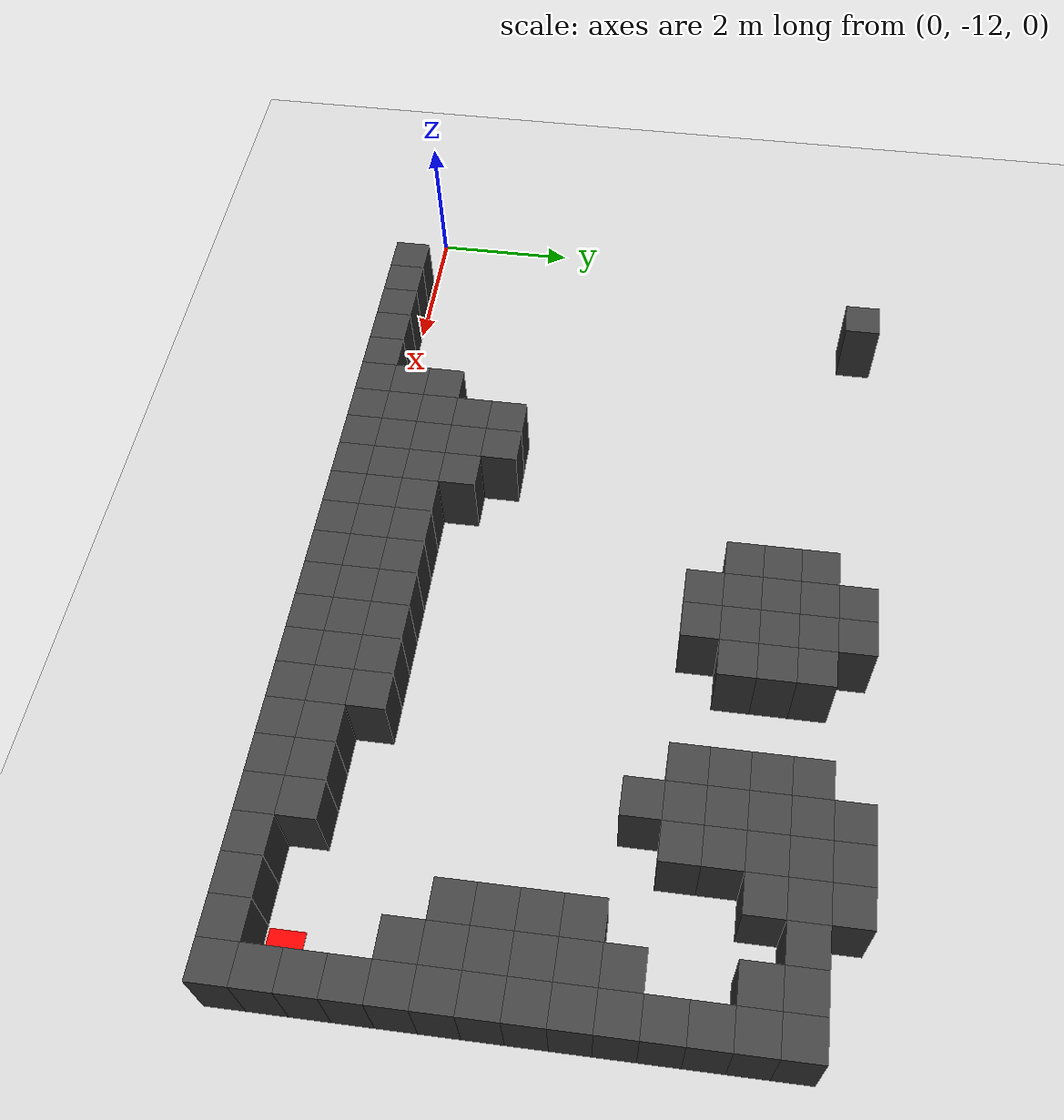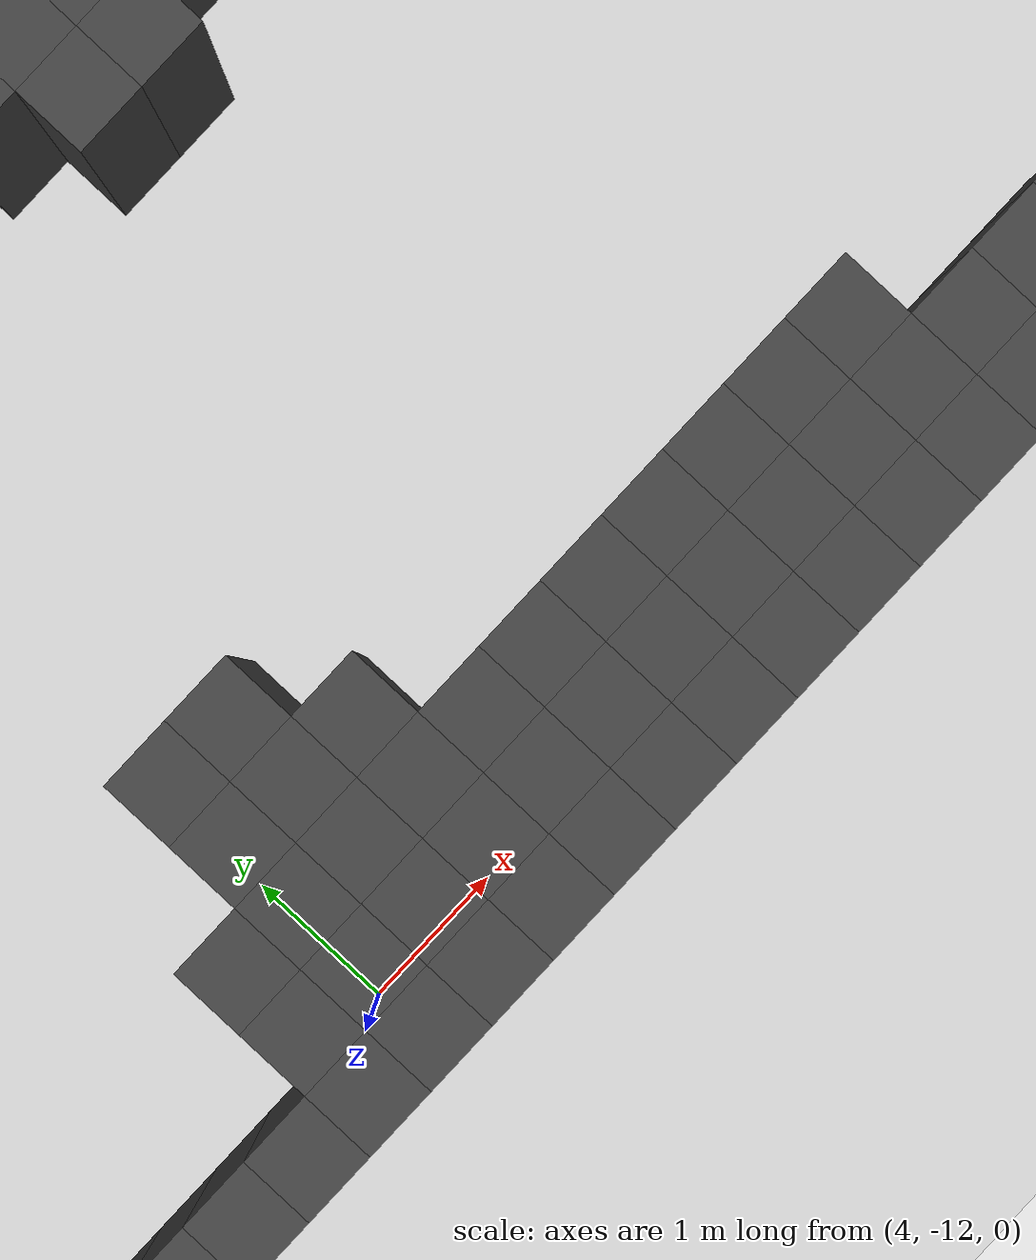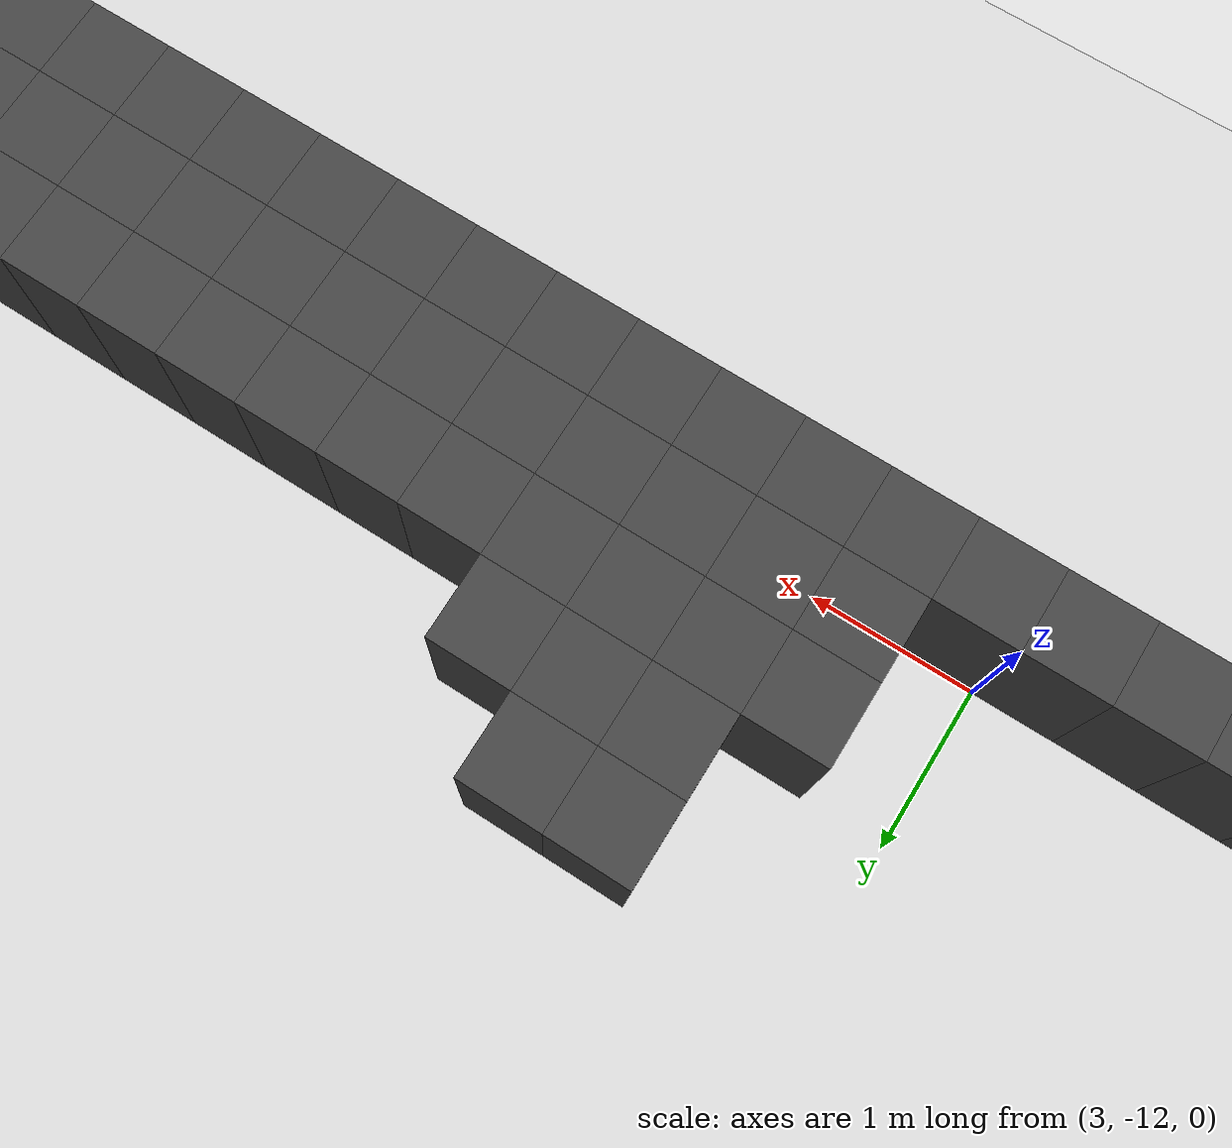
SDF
<sdf version="1.7">
 <world name="map_8829">
  <model name="ground_plane">
   <static>true</static>
   <link name="link">
    <collision name="collision">
     <geometry><plane><normal>0 0 1</normal><size>200 200</size></plane></geometry>
    </collision>
    <visual name="visual">
     <geometry><plane><normal>0 0 1</normal><size>200 200</size></plane></geometry>
     <material><ambient>0.8 0.8 0.8 1</ambient><diffuse>0.8 0.8 0.8 1</diffuse></material>
    </visual>
   </link>
  </model>
  <model name="maze_environment">
   <static>true</static>
   <link name="wall_476">
    <pose>1.750 -5.250 0.500 0 0 0</pose>
    <collision name="col"><geometry><box><size>0.5 0.5 1.0</size></box></geometry></collision>
    <visual name="vis">
     <geometry><box><size>0.5 0.5 1.0</size></box></geometry>
     <material><ambient>0.15 0.15 0.15 1</ambient><diffuse>0.25 0.25 0.25 1</diffuse></material>
    </visual>
   </link>
   <link name="wall_477">
    <pose>6.750 -5.250 0.500 0 0 0</pose>
    <collision name="col"><geometry><box><size>0.5 0.5 1.0</size></box></geometry></collision>
    <visual name="vis">
     <geometry><box><size>0.5 0.5 1.0</size></box></geometry>
     <material><ambient>0.15 0.15 0.15 1</ambient><diffuse>0.25 0.25 0.25 1</diffuse></material>
    </visual>
   </link>
   <link name="wall_478">
    <pose>7.250 -5.250 0.500 0 0 0</pose>
    <collision name="col"><geometry><box><size>0.5 0.5 1.0</size></box></geometry></collision>
    <visual name="vis">
     <geometry><box><size>0.5 0.5 1.0</size></box></geometry>
     <material><ambient>0.15 0.15 0.15 1</ambient><diffuse>0.25 0.25 0.25 1</diffuse></material>
    </visual>
   </link>
   <link name="wall_479">
    <pose>9.750 -5.250 0.500 0 0 0</pose>
    <collision name="col"><geometry><box><size>0.5 0.5 1.0</size></box></geometry></collision>
    <visual name="vis">
     <geometry><box><size>0.5 0.5 1.0</size></box></geometry>
     <material><ambient>0.15 0.15 0.15 1</ambient><diffuse>0.25 0.25 0.25 1</diffuse></material>
    </visual>
   </link>
   <link name="wall_480">
    <pose>10.250 -5.250 0.500 0 0 0</pose>
    <collision name="col"><geometry><box><size>0.5 0.5 1.0</size></box></geometry></collision>
    <visual name="vis">
     <geometry><box><size>0.5 0.5 1.0</size></box></geometry>
     <material><ambient>0.15 0.15 0.15 1</ambient><diffuse>0.25 0.25 0.25 1</diffuse></material>
    </visual>
   </link>
   <link name="wall_481">
    <pose>10.750 -5.250 0.500 0 0 0</pose>
    <collision name="col"><geometry><box><size>0.5 0.5 1.0</size></box></geometry></collision>
    <visual name="vis">
     <geometry><box><size>0.5 0.5 1.0</size></box></geometry>
     <material><ambient>0.15 0.15 0.15 1</ambient><diffuse>0.25 0.25 0.25 1</diffuse></material>
    </visual>
   </link>
   <link name="wall_491">
    <pose>6.250 -5.750 0.500 0 0 0</pose>
    <collision name="col"><geometry><box><size>0.5 0.5 1.0</size></box></geometry></collision>
    <visual name="vis">
     <geometry><box><size>0.5 0.5 1.0</size></box></geometry>
     <material><ambient>0.15 0.15 0.15 1</ambient><diffuse>0.25 0.25 0.25 1</diffuse></material>
    </visual>
   </link>
   <link name="wall_492">
    <pose>6.750 -5.750 0.500 0 0 0</pose>
    <collision name="col"><geometry><box><size>0.5 0.5 1.0</size></box></geometry></collision>
    <visual name="vis">
     <geometry><box><size>0.5 0.5 1.0</size></box></geometry>
     <material><ambient>0.15 0.15 0.15 1</ambient><diffuse>0.25 0.25 0.25 1</diffuse></material>
    </visual>
   </link>
   <link name="wall_493">
    <pose>7.250 -5.750 0.500 0 0 0</pose>
    <collision name="col"><geometry><box><size>0.5 0.5 1.0</size></box></geometry></collision>
    <visual name="vis">
     <geometry><box><size>0.5 0.5 1.0</size></box></geometry>
     <material><ambient>0.15 0.15 0.15 1</ambient><diffuse>0.25 0.25 0.25 1</diffuse></material>
    </visual>
   </link>
   <link name="wall_494">
    <pose>7.750 -5.750 0.500 0 0 0</pose>
    <collision name="col"><geometry><box><size>0.5 0.5 1.0</size></box></geometry></collision>
    <visual name="vis">
     <geometry><box><size>0.5 0.5 1.0</size></box></geometry>
     <material><ambient>0.15 0.15 0.15 1</ambient><diffuse>0.25 0.25 0.25 1</diffuse></material>
    </visual>
   </link>
   <link name="wall_495">
    <pose>9.250 -5.750 0.500 0 0 0</pose>
    <collision name="col"><geometry><box><size>0.5 0.5 1.0</size></box></geometry></collision>
    <visual name="vis">
     <geometry><box><size>0.5 0.5 1.0</size></box></geometry>
     <material><ambient>0.15 0.15 0.15 1</ambient><diffuse>0.25 0.25 0.25 1</diffuse></material>
    </visual>
   </link>
   <link name="wall_496">
    <pose>9.750 -5.750 0.500 0 0 0</pose>
    <collision name="col"><geometry><box><size>0.5 0.5 1.0</size></box></geometry></collision>
    <visual name="vis">
     <geometry><box><size>0.5 0.5 1.0</size></box></geometry>
     <material><ambient>0.15 0.15 0.15 1</ambient><diffuse>0.25 0.25 0.25 1</diffuse></material>
    </visual>
   </link>
   <link name="wall_497">
    <pose>10.250 -5.750 0.500 0 0 0</pose>
    <collision name="col"><geometry><box><size>0.5 0.5 1.0</size></box></geometry></collision>
    <visual name="vis">
     <geometry><box><size>0.5 0.5 1.0</size></box></geometry>
     <material><ambient>0.15 0.15 0.15 1</ambient><diffuse>0.25 0.25 0.25 1</diffuse></material>
    </visual>
   </link>
   <link name="wall_498">
    <pose>10.750 -5.750 0.500 0 0 0</pose>
    <collision name="col"><geometry><box><size>0.5 0.5 1.0</size></box></geometry></collision>
    <visual name="vis">
     <geometry><box><size>0.5 0.5 1.0</size></box></geometry>
     <material><ambient>0.15 0.15 0.15 1</ambient><diffuse>0.25 0.25 0.25 1</diffuse></material>
    </visual>
   </link>
   <link name="wall_499">
    <pose>11.250 -5.750 0.500 0 0 0</pose>
    <collision name="col"><geometry><box><size>0.5 0.5 1.0</size></box></geometry></collision>
    <visual name="vis">
     <geometry><box><size>0.5 0.5 1.0</size></box></geometry>
     <material><ambient>0.15 0.15 0.15 1</ambient><diffuse>0.25 0.25 0.25 1</diffuse></material>
    </visual>
   </link>
   <link name="wall_500">
    <pose>11.750 -5.750 0.500 0 0 0</pose>
    <collision name="col"><geometry><box><size>0.5 0.5 1.0</size></box></geometry></collision>
    <visual name="vis">
     <geometry><box><size>0.5 0.5 1.0</size></box></geometry>
     <material><ambient>0.15 0.15 0.15 1</ambient><diffuse>0.25 0.25 0.25 1</diffuse></material>
    </visual>
   </link>
   <link name="wall_501">
    <pose>12.250 -5.750 0.500 0 0 0</pose>
    <collision name="col"><geometry><box><size>0.5 0.5 1.0</size></box></geometry></collision>
    <visual name="vis">
     <geometry><box><size>0.5 0.5 1.0</size></box></geometry>
     <material><ambient>0.15 0.15 0.15 1</ambient><diffuse>0.25 0.25 0.25 1</diffuse></material>
    </visual>
   </link>
   <link name="wall_507">
    <pose>6.250 -6.250 0.500 0 0 0</pose>
    <collision name="col"><geometry><box><size>0.5 0.5 1.0</size></box></geometry></collision>
    <visual name="vis">
     <geometry><box><size>0.5 0.5 1.0</size></box></geometry>
     <material><ambient>0.15 0.15 0.15 1</ambient><diffuse>0.25 0.25 0.25 1</diffuse></material>
    </visual>
   </link>
   <link name="wall_508">
    <pose>6.750 -6.250 0.500 0 0 0</pose>
    <collision name="col"><geometry><box><size>0.5 0.5 1.0</size></box></geometry></collision>
    <visual name="vis">
     <geometry><box><size>0.5 0.5 1.0</size></box></geometry>
     <material><ambient>0.15 0.15 0.15 1</ambient><diffuse>0.25 0.25 0.25 1</diffuse></material>
    </visual>
   </link>
   <link name="wall_509">
    <pose>7.250 -6.250 0.500 0 0 0</pose>
    <collision name="col"><geometry><box><size>0.5 0.5 1.0</size></box></geometry></collision>
    <visual name="vis">
     <geometry><box><size>0.5 0.5 1.0</size></box></geometry>
     <material><ambient>0.15 0.15 0.15 1</ambient><diffuse>0.25 0.25 0.25 1</diffuse></material>
    </visual>
   </link>
   <link name="wall_510">
    <pose>7.750 -6.250 0.500 0 0 0</pose>
    <collision name="col"><geometry><box><size>0.5 0.5 1.0</size></box></geometry></collision>
    <visual name="vis">
     <geometry><box><size>0.5 0.5 1.0</size></box></geometry>
     <material><ambient>0.15 0.15 0.15 1</ambient><diffuse>0.25 0.25 0.25 1</diffuse></material>
    </visual>
   </link>
   <link name="wall_511">
    <pose>9.250 -6.250 0.500 0 0 0</pose>
    <collision name="col"><geometry><box><size>0.5 0.5 1.0</size></box></geometry></collision>
    <visual name="vis">
     <geometry><box><size>0.5 0.5 1.0</size></box></geometry>
     <material><ambient>0.15 0.15 0.15 1</ambient><diffuse>0.25 0.25 0.25 1</diffuse></material>
    </visual>
   </link>
   <link name="wall_512">
    <pose>9.750 -6.250 0.500 0 0 0</pose>
    <collision name="col"><geometry><box><size>0.5 0.5 1.0</size></box></geometry></collision>
    <visual name="vis">
     <geometry><box><size>0.5 0.5 1.0</size></box></geometry>
     <material><ambient>0.15 0.15 0.15 1</ambient><diffuse>0.25 0.25 0.25 1</diffuse></material>
    </visual>
   </link>
   <link name="wall_513">
    <pose>10.250 -6.250 0.500 0 0 0</pose>
    <collision name="col"><geometry><box><size>0.5 0.5 1.0</size></box></geometry></collision>
    <visual name="vis">
     <geometry><box><size>0.5 0.5 1.0</size></box></geometry>
     <material><ambient>0.15 0.15 0.15 1</ambient><diffuse>0.25 0.25 0.25 1</diffuse></material>
    </visual>
   </link>
   <link name="wall_514">
    <pose>10.750 -6.250 0.500 0 0 0</pose>
    <collision name="col"><geometry><box><size>0.5 0.5 1.0</size></box></geometry></collision>
    <visual name="vis">
     <geometry><box><size>0.5 0.5 1.0</size></box></geometry>
     <material><ambient>0.15 0.15 0.15 1</ambient><diffuse>0.25 0.25 0.25 1</diffuse></material>
    </visual>
   </link>
   <link name="wall_515">
    <pose>11.750 -6.250 0.500 0 0 0</pose>
    <collision name="col"><geometry><box><size>0.5 0.5 1.0</size></box></geometry></collision>
    <visual name="vis">
     <geometry><box><size>0.5 0.5 1.0</size></box></geometry>
     <material><ambient>0.15 0.15 0.15 1</ambient><diffuse>0.25 0.25 0.25 1</diffuse></material>
    </visual>
   </link>
   <link name="wall_516">
    <pose>12.250 -6.250 0.500 0 0 0</pose>
    <collision name="col"><geometry><box><size>0.5 0.5 1.0</size></box></geometry></collision>
    <visual name="vis">
     <geometry><box><size>0.5 0.5 1.0</size></box></geometry>
     <material><ambient>0.15 0.15 0.15 1</ambient><diffuse>0.25 0.25 0.25 1</diffuse></material>
    </visual>
   </link>
   <link name="wall_519">
    <pose>6.250 -6.750 0.500 0 0 0</pose>
    <collision name="col"><geometry><box><size>0.5 0.5 1.0</size></box></geometry></collision>
    <visual name="vis">
     <geometry><box><size>0.5 0.5 1.0</size></box></geometry>
     <material><ambient>0.15 0.15 0.15 1</ambient><diffuse>0.25 0.25 0.25 1</diffuse></material>
    </visual>
   </link>
   <link name="wall_520">
    <pose>6.750 -6.750 0.500 0 0 0</pose>
    <collision name="col"><geometry><box><size>0.5 0.5 1.0</size></box></geometry></collision>
    <visual name="vis">
     <geometry><box><size>0.5 0.5 1.0</size></box></geometry>
     <material><ambient>0.15 0.15 0.15 1</ambient><diffuse>0.25 0.25 0.25 1</diffuse></material>
    </visual>
   </link>
   <link name="wall_521">
    <pose>7.250 -6.750 0.500 0 0 0</pose>
    <collision name="col"><geometry><box><size>0.5 0.5 1.0</size></box></geometry></collision>
    <visual name="vis">
     <geometry><box><size>0.5 0.5 1.0</size></box></geometry>
     <material><ambient>0.15 0.15 0.15 1</ambient><diffuse>0.25 0.25 0.25 1</diffuse></material>
    </visual>
   </link>
   <link name="wall_522">
    <pose>7.750 -6.750 0.500 0 0 0</pose>
    <collision name="col"><geometry><box><size>0.5 0.5 1.0</size></box></geometry></collision>
    <visual name="vis">
     <geometry><box><size>0.5 0.5 1.0</size></box></geometry>
     <material><ambient>0.15 0.15 0.15 1</ambient><diffuse>0.25 0.25 0.25 1</diffuse></material>
    </visual>
   </link>
   <link name="wall_523">
    <pose>9.250 -6.750 0.500 0 0 0</pose>
    <collision name="col"><geometry><box><size>0.5 0.5 1.0</size></box></geometry></collision>
    <visual name="vis">
     <geometry><box><size>0.5 0.5 1.0</size></box></geometry>
     <material><ambient>0.15 0.15 0.15 1</ambient><diffuse>0.25 0.25 0.25 1</diffuse></material>
    </visual>
   </link>
   <link name="wall_524">
    <pose>9.750 -6.750 0.500 0 0 0</pose>
    <collision name="col"><geometry><box><size>0.5 0.5 1.0</size></box></geometry></collision>
    <visual name="vis">
     <geometry><box><size>0.5 0.5 1.0</size></box></geometry>
     <material><ambient>0.15 0.15 0.15 1</ambient><diffuse>0.25 0.25 0.25 1</diffuse></material>
    </visual>
   </link>
   <link name="wall_525">
    <pose>10.250 -6.750 0.500 0 0 0</pose>
    <collision name="col"><geometry><box><size>0.5 0.5 1.0</size></box></geometry></collision>
    <visual name="vis">
     <geometry><box><size>0.5 0.5 1.0</size></box></geometry>
     <material><ambient>0.15 0.15 0.15 1</ambient><diffuse>0.25 0.25 0.25 1</diffuse></material>
    </visual>
   </link>
   <link name="wall_526">
    <pose>12.250 -6.750 0.500 0 0 0</pose>
    <collision name="col"><geometry><box><size>0.5 0.5 1.0</size></box></geometry></collision>
    <visual name="vis">
     <geometry><box><size>0.5 0.5 1.0</size></box></geometry>
     <material><ambient>0.15 0.15 0.15 1</ambient><diffuse>0.25 0.25 0.25 1</diffuse></material>
    </visual>
   </link>
   <link name="wall_528">
    <pose>6.750 -7.250 0.500 0 0 0</pose>
    <collision name="col"><geometry><box><size>0.5 0.5 1.0</size></box></geometry></collision>
    <visual name="vis">
     <geometry><box><size>0.5 0.5 1.0</size></box></geometry>
     <material><ambient>0.15 0.15 0.15 1</ambient><diffuse>0.25 0.25 0.25 1</diffuse></material>
    </visual>
   </link>
   <link name="wall_529">
    <pose>7.250 -7.250 0.500 0 0 0</pose>
    <collision name="col"><geometry><box><size>0.5 0.5 1.0</size></box></geometry></collision>
    <visual name="vis">
     <geometry><box><size>0.5 0.5 1.0</size></box></geometry>
     <material><ambient>0.15 0.15 0.15 1</ambient><diffuse>0.25 0.25 0.25 1</diffuse></material>
    </visual>
   </link>
   <link name="wall_530">
    <pose>9.250 -7.250 0.500 0 0 0</pose>
    <collision name="col"><geometry><box><size>0.5 0.5 1.0</size></box></geometry></collision>
    <visual name="vis">
     <geometry><box><size>0.5 0.5 1.0</size></box></geometry>
     <material><ambient>0.15 0.15 0.15 1</ambient><diffuse>0.25 0.25 0.25 1</diffuse></material>
    </visual>
   </link>
   <link name="wall_531">
    <pose>9.750 -7.250 0.500 0 0 0</pose>
    <collision name="col"><geometry><box><size>0.5 0.5 1.0</size></box></geometry></collision>
    <visual name="vis">
     <geometry><box><size>0.5 0.5 1.0</size></box></geometry>
     <material><ambient>0.15 0.15 0.15 1</ambient><diffuse>0.25 0.25 0.25 1</diffuse></material>
    </visual>
   </link>
   <link name="wall_532">
    <pose>10.250 -7.250 0.500 0 0 0</pose>
    <collision name="col"><geometry><box><size>0.5 0.5 1.0</size></box></geometry></collision>
    <visual name="vis">
     <geometry><box><size>0.5 0.5 1.0</size></box></geometry>
     <material><ambient>0.15 0.15 0.15 1</ambient><diffuse>0.25 0.25 0.25 1</diffuse></material>
    </visual>
   </link>
   <link name="wall_533">
    <pose>12.250 -7.250 0.500 0 0 0</pose>
    <collision name="col"><geometry><box><size>0.5 0.5 1.0</size></box></geometry></collision>
    <visual name="vis">
     <geometry><box><size>0.5 0.5 1.0</size></box></geometry>
     <material><ambient>0.15 0.15 0.15 1</ambient><diffuse>0.25 0.25 0.25 1</diffuse></material>
    </visual>
   </link>
   <link name="wall_535">
    <pose>9.750 -7.750 0.500 0 0 0</pose>
    <collision name="col"><geometry><box><size>0.5 0.5 1.0</size></box></geometry></collision>
    <visual name="vis">
     <geometry><box><size>0.5 0.5 1.0</size></box></geometry>
     <material><ambient>0.15 0.15 0.15 1</ambient><diffuse>0.25 0.25 0.25 1</diffuse></material>
    </visual>
   </link>
   <link name="wall_536">
    <pose>11.750 -7.750 0.500 0 0 0</pose>
    <collision name="col"><geometry><box><size>0.5 0.5 1.0</size></box></geometry></collision>
    <visual name="vis">
     <geometry><box><size>0.5 0.5 1.0</size></box></geometry>
     <material><ambient>0.15 0.15 0.15 1</ambient><diffuse>0.25 0.25 0.25 1</diffuse></material>
    </visual>
   </link>
   <link name="wall_537">
    <pose>12.250 -7.750 0.500 0 0 0</pose>
    <collision name="col"><geometry><box><size>0.5 0.5 1.0</size></box></geometry></collision>
    <visual name="vis">
     <geometry><box><size>0.5 0.5 1.0</size></box></geometry>
     <material><ambient>0.15 0.15 0.15 1</ambient><diffuse>0.25 0.25 0.25 1</diffuse></material>
    </visual>
   </link>
   <link name="wall_539">
    <pose>11.250 -8.250 0.500 0 0 0</pose>
    <collision name="col"><geometry><box><size>0.5 0.5 1.0</size></box></geometry></collision>
    <visual name="vis">
     <geometry><box><size>0.5 0.5 1.0</size></box></geometry>
     <material><ambient>0.15 0.15 0.15 1</ambient><diffuse>0.25 0.25 0.25 1</diffuse></material>
    </visual>
   </link>
   <link name="wall_540">
    <pose>11.750 -8.250 0.500 0 0 0</pose>
    <collision name="col"><geometry><box><size>0.5 0.5 1.0</size></box></geometry></collision>
    <visual name="vis">
     <geometry><box><size>0.5 0.5 1.0</size></box></geometry>
     <material><ambient>0.15 0.15 0.15 1</ambient><diffuse>0.25 0.25 0.25 1</diffuse></material>
    </visual>
   </link>
   <link name="wall_541">
    <pose>12.250 -8.250 0.500 0 0 0</pose>
    <collision name="col"><geometry><box><size>0.5 0.5 1.0</size></box></geometry></collision>
    <visual name="vis">
     <geometry><box><size>0.5 0.5 1.0</size></box></geometry>
     <material><ambient>0.15 0.15 0.15 1</ambient><diffuse>0.25 0.25 0.25 1</diffuse></material>
    </visual>
   </link>
   <link name="wall_546">
    <pose>11.250 -8.750 0.500 0 0 0</pose>
    <collision name="col"><geometry><box><size>0.5 0.5 1.0</size></box></geometry></collision>
    <visual name="vis">
     <geometry><box><size>0.5 0.5 1.0</size></box></geometry>
     <material><ambient>0.15 0.15 0.15 1</ambient><diffuse>0.25 0.25 0.25 1</diffuse></material>
    </visual>
   </link>
   <link name="wall_547">
    <pose>11.750 -8.750 0.500 0 0 0</pose>
    <collision name="col"><geometry><box><size>0.5 0.5 1.0</size></box></geometry></collision>
    <visual name="vis">
     <geometry><box><size>0.5 0.5 1.0</size></box></geometry>
     <material><ambient>0.15 0.15 0.15 1</ambient><diffuse>0.25 0.25 0.25 1</diffuse></material>
    </visual>
   </link>
   <link name="wall_548">
    <pose>12.250 -8.750 0.500 0 0 0</pose>
    <collision name="col"><geometry><box><size>0.5 0.5 1.0</size></box></geometry></collision>
    <visual name="vis">
     <geometry><box><size>0.5 0.5 1.0</size></box></geometry>
     <material><ambient>0.15 0.15 0.15 1</ambient><diffuse>0.25 0.25 0.25 1</diffuse></material>
    </visual>
   </link>
   <link name="wall_554">
    <pose>11.250 -9.250 0.500 0 0 0</pose>
    <collision name="col"><geometry><box><size>0.5 0.5 1.0</size></box></geometry></collision>
    <visual name="vis">
     <geometry><box><size>0.5 0.5 1.0</size></box></geometry>
     <material><ambient>0.15 0.15 0.15 1</ambient><diffuse>0.25 0.25 0.25 1</diffuse></material>
    </visual>
   </link>
   <link name="wall_555">
    <pose>11.750 -9.250 0.500 0 0 0</pose>
    <collision name="col"><geometry><box><size>0.5 0.5 1.0</size></box></geometry></collision>
    <visual name="vis">
     <geometry><box><size>0.5 0.5 1.0</size></box></geometry>
     <material><ambient>0.15 0.15 0.15 1</ambient><diffuse>0.25 0.25 0.25 1</diffuse></material>
    </visual>
   </link>
   <link name="wall_556">
    <pose>12.250 -9.250 0.500 0 0 0</pose>
    <collision name="col"><geometry><box><size>0.5 0.5 1.0</size></box></geometry></collision>
    <visual name="vis">
     <geometry><box><size>0.5 0.5 1.0</size></box></geometry>
     <material><ambient>0.15 0.15 0.15 1</ambient><diffuse>0.25 0.25 0.25 1</diffuse></material>
    </visual>
   </link>
   <link name="wall_563">
    <pose>11.250 -9.750 0.500 0 0 0</pose>
    <collision name="col"><geometry><box><size>0.5 0.5 1.0</size></box></geometry></collision>
    <visual name="vis">
     <geometry><box><size>0.5 0.5 1.0</size></box></geometry>
     <material><ambient>0.15 0.15 0.15 1</ambient><diffuse>0.25 0.25 0.25 1</diffuse></material>
    </visual>
   </link>
   <link name="wall_564">
    <pose>11.750 -9.750 0.500 0 0 0</pose>
    <collision name="col"><geometry><box><size>0.5 0.5 1.0</size></box></geometry></collision>
    <visual name="vis">
     <geometry><box><size>0.5 0.5 1.0</size></box></geometry>
     <material><ambient>0.15 0.15 0.15 1</ambient><diffuse>0.25 0.25 0.25 1</diffuse></material>
    </visual>
   </link>
   <link name="wall_565">
    <pose>12.250 -9.750 0.500 0 0 0</pose>
    <collision name="col"><geometry><box><size>0.5 0.5 1.0</size></box></geometry></collision>
    <visual name="vis">
     <geometry><box><size>0.5 0.5 1.0</size></box></geometry>
     <material><ambient>0.15 0.15 0.15 1</ambient><diffuse>0.25 0.25 0.25 1</diffuse></material>
    </visual>
   </link>
   <link name="wall_570">
    <pose>4.250 -10.250 0.500 0 0 0</pose>
    <collision name="col"><geometry><box><size>0.5 0.5 1.0</size></box></geometry></collision>
    <visual name="vis">
     <geometry><box><size>0.5 0.5 1.0</size></box></geometry>
     <material><ambient>0.15 0.15 0.15 1</ambient><diffuse>0.25 0.25 0.25 1</diffuse></material>
    </visual>
   </link>
   <link name="wall_571">
    <pose>4.750 -10.250 0.500 0 0 0</pose>
    <collision name="col"><geometry><box><size>0.5 0.5 1.0</size></box></geometry></collision>
    <visual name="vis">
     <geometry><box><size>0.5 0.5 1.0</size></box></geometry>
     <material><ambient>0.15 0.15 0.15 1</ambient><diffuse>0.25 0.25 0.25 1</diffuse></material>
    </visual>
   </link>
   <link name="wall_572">
    <pose>11.750 -10.250 0.500 0 0 0</pose>
    <collision name="col"><geometry><box><size>0.5 0.5 1.0</size></box></geometry></collision>
    <visual name="vis">
     <geometry><box><size>0.5 0.5 1.0</size></box></geometry>
     <material><ambient>0.15 0.15 0.15 1</ambient><diffuse>0.25 0.25 0.25 1</diffuse></material>
    </visual>
   </link>
   <link name="wall_573">
    <pose>12.250 -10.250 0.500 0 0 0</pose>
    <collision name="col"><geometry><box><size>0.5 0.5 1.0</size></box></geometry></collision>
    <visual name="vis">
     <geometry><box><size>0.5 0.5 1.0</size></box></geometry>
     <material><ambient>0.15 0.15 0.15 1</ambient><diffuse>0.25 0.25 0.25 1</diffuse></material>
    </visual>
   </link>
   <link name="wall_579">
    <pose>4.250 -10.750 0.500 0 0 0</pose>
    <collision name="col"><geometry><box><size>0.5 0.5 1.0</size></box></geometry></collision>
    <visual name="vis">
     <geometry><box><size>0.5 0.5 1.0</size></box></geometry>
     <material><ambient>0.15 0.15 0.15 1</ambient><diffuse>0.25 0.25 0.25 1</diffuse></material>
    </visual>
   </link>
   <link name="wall_580">
    <pose>4.750 -10.750 0.500 0 0 0</pose>
    <collision name="col"><geometry><box><size>0.5 0.5 1.0</size></box></geometry></collision>
    <visual name="vis">
     <geometry><box><size>0.5 0.5 1.0</size></box></geometry>
     <material><ambient>0.15 0.15 0.15 1</ambient><diffuse>0.25 0.25 0.25 1</diffuse></material>
    </visual>
   </link>
   <link name="wall_581">
    <pose>5.250 -10.750 0.500 0 0 0</pose>
    <collision name="col"><geometry><box><size>0.5 0.5 1.0</size></box></geometry></collision>
    <visual name="vis">
     <geometry><box><size>0.5 0.5 1.0</size></box></geometry>
     <material><ambient>0.15 0.15 0.15 1</ambient><diffuse>0.25 0.25 0.25 1</diffuse></material>
    </visual>
   </link>
   <link name="wall_582">
    <pose>12.250 -10.750 0.500 0 0 0</pose>
    <collision name="col"><geometry><box><size>0.5 0.5 1.0</size></box></geometry></collision>
    <visual name="vis">
     <geometry><box><size>0.5 0.5 1.0</size></box></geometry>
     <material><ambient>0.15 0.15 0.15 1</ambient><diffuse>0.25 0.25 0.25 1</diffuse></material>
    </visual>
   </link>
   <link name="wall_593">
    <pose>3.750 -11.250 0.500 0 0 0</pose>
    <collision name="col"><geometry><box><size>0.5 0.5 1.0</size></box></geometry></collision>
    <visual name="vis">
     <geometry><box><size>0.5 0.5 1.0</size></box></geometry>
     <material><ambient>0.15 0.15 0.15 1</ambient><diffuse>0.25 0.25 0.25 1</diffuse></material>
    </visual>
   </link>
   <link name="wall_594">
    <pose>4.250 -11.250 0.500 0 0 0</pose>
    <collision name="col"><geometry><box><size>0.5 0.5 1.0</size></box></geometry></collision>
    <visual name="vis">
     <geometry><box><size>0.5 0.5 1.0</size></box></geometry>
     <material><ambient>0.15 0.15 0.15 1</ambient><diffuse>0.25 0.25 0.25 1</diffuse></material>
    </visual>
   </link>
   <link name="wall_595">
    <pose>4.750 -11.250 0.500 0 0 0</pose>
    <collision name="col"><geometry><box><size>0.5 0.5 1.0</size></box></geometry></collision>
    <visual name="vis">
     <geometry><box><size>0.5 0.5 1.0</size></box></geometry>
     <material><ambient>0.15 0.15 0.15 1</ambient><diffuse>0.25 0.25 0.25 1</diffuse></material>
    </visual>
   </link>
   <link name="wall_596">
    <pose>5.250 -11.250 0.500 0 0 0</pose>
    <collision name="col"><geometry><box><size>0.5 0.5 1.0</size></box></geometry></collision>
    <visual name="vis">
     <geometry><box><size>0.5 0.5 1.0</size></box></geometry>
     <material><ambient>0.15 0.15 0.15 1</ambient><diffuse>0.25 0.25 0.25 1</diffuse></material>
    </visual>
   </link>
   <link name="wall_597">
    <pose>5.750 -11.250 0.500 0 0 0</pose>
    <collision name="col"><geometry><box><size>0.5 0.5 1.0</size></box></geometry></collision>
    <visual name="vis">
     <geometry><box><size>0.5 0.5 1.0</size></box></geometry>
     <material><ambient>0.15 0.15 0.15 1</ambient><diffuse>0.25 0.25 0.25 1</diffuse></material>
    </visual>
   </link>
   <link name="wall_598">
    <pose>6.250 -11.250 0.500 0 0 0</pose>
    <collision name="col"><geometry><box><size>0.5 0.5 1.0</size></box></geometry></collision>
    <visual name="vis">
     <geometry><box><size>0.5 0.5 1.0</size></box></geometry>
     <material><ambient>0.15 0.15 0.15 1</ambient><diffuse>0.25 0.25 0.25 1</diffuse></material>
    </visual>
   </link>
   <link name="wall_599">
    <pose>6.750 -11.250 0.500 0 0 0</pose>
    <collision name="col"><geometry><box><size>0.5 0.5 1.0</size></box></geometry></collision>
    <visual name="vis">
     <geometry><box><size>0.5 0.5 1.0</size></box></geometry>
     <material><ambient>0.15 0.15 0.15 1</ambient><diffuse>0.25 0.25 0.25 1</diffuse></material>
    </visual>
   </link>
   <link name="wall_600">
    <pose>7.250 -11.250 0.500 0 0 0</pose>
    <collision name="col"><geometry><box><size>0.5 0.5 1.0</size></box></geometry></collision>
    <visual name="vis">
     <geometry><box><size>0.5 0.5 1.0</size></box></geometry>
     <material><ambient>0.15 0.15 0.15 1</ambient><diffuse>0.25 0.25 0.25 1</diffuse></material>
    </visual>
   </link>
   <link name="wall_601">
    <pose>7.750 -11.250 0.500 0 0 0</pose>
    <collision name="col"><geometry><box><size>0.5 0.5 1.0</size></box></geometry></collision>
    <visual name="vis">
     <geometry><box><size>0.5 0.5 1.0</size></box></geometry>
     <material><ambient>0.15 0.15 0.15 1</ambient><diffuse>0.25 0.25 0.25 1</diffuse></material>
    </visual>
   </link>
   <link name="wall_602">
    <pose>8.250 -11.250 0.500 0 0 0</pose>
    <collision name="col"><geometry><box><size>0.5 0.5 1.0</size></box></geometry></collision>
    <visual name="vis">
     <geometry><box><size>0.5 0.5 1.0</size></box></geometry>
     <material><ambient>0.15 0.15 0.15 1</ambient><diffuse>0.25 0.25 0.25 1</diffuse></material>
    </visual>
   </link>
   <link name="wall_603">
    <pose>8.750 -11.250 0.500 0 0 0</pose>
    <collision name="col"><geometry><box><size>0.5 0.5 1.0</size></box></geometry></collision>
    <visual name="vis">
     <geometry><box><size>0.5 0.5 1.0</size></box></geometry>
     <material><ambient>0.15 0.15 0.15 1</ambient><diffuse>0.25 0.25 0.25 1</diffuse></material>
    </visual>
   </link>
   <link name="wall_604">
    <pose>12.250 -11.250 0.500 0 0 0</pose>
    <collision name="col"><geometry><box><size>0.5 0.5 1.0</size></box></geometry></collision>
    <visual name="vis">
     <geometry><box><size>0.5 0.5 1.0</size></box></geometry>
     <material><ambient>0.15 0.15 0.15 1</ambient><diffuse>0.25 0.25 0.25 1</diffuse></material>
    </visual>
   </link>
   <link name="wall_622">
    <pose>3.750 -11.750 0.500 0 0 0</pose>
    <collision name="col"><geometry><box><size>0.5 0.5 1.0</size></box></geometry></collision>
    <visual name="vis">
     <geometry><box><size>0.5 0.5 1.0</size></box></geometry>
     <material><ambient>0.15 0.15 0.15 1</ambient><diffuse>0.25 0.25 0.25 1</diffuse></material>
    </visual>
   </link>
   <link name="wall_623">
    <pose>4.250 -11.750 0.500 0 0 0</pose>
    <collision name="col"><geometry><box><size>0.5 0.5 1.0</size></box></geometry></collision>
    <visual name="vis">
     <geometry><box><size>0.5 0.5 1.0</size></box></geometry>
     <material><ambient>0.15 0.15 0.15 1</ambient><diffuse>0.25 0.25 0.25 1</diffuse></material>
    </visual>
   </link>
   <link name="wall_624">
    <pose>4.750 -11.750 0.500 0 0 0</pose>
    <collision name="col"><geometry><box><size>0.5 0.5 1.0</size></box></geometry></collision>
    <visual name="vis">
     <geometry><box><size>0.5 0.5 1.0</size></box></geometry>
     <material><ambient>0.15 0.15 0.15 1</ambient><diffuse>0.25 0.25 0.25 1</diffuse></material>
    </visual>
   </link>
   <link name="wall_625">
    <pose>5.250 -11.750 0.500 0 0 0</pose>
    <collision name="col"><geometry><box><size>0.5 0.5 1.0</size></box></geometry></collision>
    <visual name="vis">
     <geometry><box><size>0.5 0.5 1.0</size></box></geometry>
     <material><ambient>0.15 0.15 0.15 1</ambient><diffuse>0.25 0.25 0.25 1</diffuse></material>
    </visual>
   </link>
   <link name="wall_626">
    <pose>5.750 -11.750 0.500 0 0 0</pose>
    <collision name="col"><geometry><box><size>0.5 0.5 1.0</size></box></geometry></collision>
    <visual name="vis">
     <geometry><box><size>0.5 0.5 1.0</size></box></geometry>
     <material><ambient>0.15 0.15 0.15 1</ambient><diffuse>0.25 0.25 0.25 1</diffuse></material>
    </visual>
   </link>
   <link name="wall_627">
    <pose>6.250 -11.750 0.500 0 0 0</pose>
    <collision name="col"><geometry><box><size>0.5 0.5 1.0</size></box></geometry></collision>
    <visual name="vis">
     <geometry><box><size>0.5 0.5 1.0</size></box></geometry>
     <material><ambient>0.15 0.15 0.15 1</ambient><diffuse>0.25 0.25 0.25 1</diffuse></material>
    </visual>
   </link>
   <link name="wall_628">
    <pose>6.750 -11.750 0.500 0 0 0</pose>
    <collision name="col"><geometry><box><size>0.5 0.5 1.0</size></box></geometry></collision>
    <visual name="vis">
     <geometry><box><size>0.5 0.5 1.0</size></box></geometry>
     <material><ambient>0.15 0.15 0.15 1</ambient><diffuse>0.25 0.25 0.25 1</diffuse></material>
    </visual>
   </link>
   <link name="wall_629">
    <pose>7.250 -11.750 0.500 0 0 0</pose>
    <collision name="col"><geometry><box><size>0.5 0.5 1.0</size></box></geometry></collision>
    <visual name="vis">
     <geometry><box><size>0.5 0.5 1.0</size></box></geometry>
     <material><ambient>0.15 0.15 0.15 1</ambient><diffuse>0.25 0.25 0.25 1</diffuse></material>
    </visual>
   </link>
   <link name="wall_630">
    <pose>7.750 -11.750 0.500 0 0 0</pose>
    <collision name="col"><geometry><box><size>0.5 0.5 1.0</size></box></geometry></collision>
    <visual name="vis">
     <geometry><box><size>0.5 0.5 1.0</size></box></geometry>
     <material><ambient>0.15 0.15 0.15 1</ambient><diffuse>0.25 0.25 0.25 1</diffuse></material>
    </visual>
   </link>
   <link name="wall_631">
    <pose>8.250 -11.750 0.500 0 0 0</pose>
    <collision name="col"><geometry><box><size>0.5 0.5 1.0</size></box></geometry></collision>
    <visual name="vis">
     <geometry><box><size>0.5 0.5 1.0</size></box></geometry>
     <material><ambient>0.15 0.15 0.15 1</ambient><diffuse>0.25 0.25 0.25 1</diffuse></material>
    </visual>
   </link>
   <link name="wall_632">
    <pose>8.750 -11.750 0.500 0 0 0</pose>
    <collision name="col"><geometry><box><size>0.5 0.5 1.0</size></box></geometry></collision>
    <visual name="vis">
     <geometry><box><size>0.5 0.5 1.0</size></box></geometry>
     <material><ambient>0.15 0.15 0.15 1</ambient><diffuse>0.25 0.25 0.25 1</diffuse></material>
    </visual>
   </link>
   <link name="wall_633">
    <pose>9.250 -11.750 0.500 0 0 0</pose>
    <collision name="col"><geometry><box><size>0.5 0.5 1.0</size></box></geometry></collision>
    <visual name="vis">
     <geometry><box><size>0.5 0.5 1.0</size></box></geometry>
     <material><ambient>0.15 0.15 0.15 1</ambient><diffuse>0.25 0.25 0.25 1</diffuse></material>
    </visual>
   </link>
   <link name="wall_634">
    <pose>9.750 -11.750 0.500 0 0 0</pose>
    <collision name="col"><geometry><box><size>0.5 0.5 1.0</size></box></geometry></collision>
    <visual name="vis">
     <geometry><box><size>0.5 0.5 1.0</size></box></geometry>
     <material><ambient>0.15 0.15 0.15 1</ambient><diffuse>0.25 0.25 0.25 1</diffuse></material>
    </visual>
   </link>
   <link name="wall_635">
    <pose>10.250 -11.750 0.500 0 0 0</pose>
    <collision name="col"><geometry><box><size>0.5 0.5 1.0</size></box></geometry></collision>
    <visual name="vis">
     <geometry><box><size>0.5 0.5 1.0</size></box></geometry>
     <material><ambient>0.15 0.15 0.15 1</ambient><diffuse>0.25 0.25 0.25 1</diffuse></material>
    </visual>
   </link>
   <link name="wall_636">
    <pose>12.250 -11.750 0.500 0 0 0</pose>
    <collision name="col"><geometry><box><size>0.5 0.5 1.0</size></box></geometry></collision>
    <visual name="vis">
     <geometry><box><size>0.5 0.5 1.0</size></box></geometry>
     <material><ambient>0.15 0.15 0.15 1</ambient><diffuse>0.25 0.25 0.25 1</diffuse></material>
    </visual>
   </link>
   <link name="wall_664">
    <pose>1.250 -12.250 0.500 0 0 0</pose>
    <collision name="col"><geometry><box><size>0.5 0.5 1.0</size></box></geometry></collision>
    <visual name="vis">
     <geometry><box><size>0.5 0.5 1.0</size></box></geometry>
     <material><ambient>0.15 0.15 0.15 1</ambient><diffuse>0.25 0.25 0.25 1</diffuse></material>
    </visual>
   </link>
   <link name="wall_665">
    <pose>1.750 -12.250 0.500 0 0 0</pose>
    <collision name="col"><geometry><box><size>0.5 0.5 1.0</size></box></geometry></collision>
    <visual name="vis">
     <geometry><box><size>0.5 0.5 1.0</size></box></geometry>
     <material><ambient>0.15 0.15 0.15 1</ambient><diffuse>0.25 0.25 0.25 1</diffuse></material>
    </visual>
   </link>
   <link name="wall_666">
    <pose>2.250 -12.250 0.500 0 0 0</pose>
    <collision name="col"><geometry><box><size>0.5 0.5 1.0</size></box></geometry></collision>
    <visual name="vis">
     <geometry><box><size>0.5 0.5 1.0</size></box></geometry>
     <material><ambient>0.15 0.15 0.15 1</ambient><diffuse>0.25 0.25 0.25 1</diffuse></material>
    </visual>
   </link>
   <link name="wall_667">
    <pose>2.750 -12.250 0.500 0 0 0</pose>
    <collision name="col"><geometry><box><size>0.5 0.5 1.0</size></box></geometry></collision>
    <visual name="vis">
     <geometry><box><size>0.5 0.5 1.0</size></box></geometry>
     <material><ambient>0.15 0.15 0.15 1</ambient><diffuse>0.25 0.25 0.25 1</diffuse></material>
    </visual>
   </link>
   <link name="wall_668">
    <pose>3.250 -12.250 0.500 0 0 0</pose>
    <collision name="col"><geometry><box><size>0.5 0.5 1.0</size></box></geometry></collision>
    <visual name="vis">
     <geometry><box><size>0.5 0.5 1.0</size></box></geometry>
     <material><ambient>0.15 0.15 0.15 1</ambient><diffuse>0.25 0.25 0.25 1</diffuse></material>
    </visual>
   </link>
   <link name="wall_669">
    <pose>3.750 -12.250 0.500 0 0 0</pose>
    <collision name="col"><geometry><box><size>0.5 0.5 1.0</size></box></geometry></collision>
    <visual name="vis">
     <geometry><box><size>0.5 0.5 1.0</size></box></geometry>
     <material><ambient>0.15 0.15 0.15 1</ambient><diffuse>0.25 0.25 0.25 1</diffuse></material>
    </visual>
   </link>
   <link name="wall_670">
    <pose>4.250 -12.250 0.500 0 0 0</pose>
    <collision name="col"><geometry><box><size>0.5 0.5 1.0</size></box></geometry></collision>
    <visual name="vis">
     <geometry><box><size>0.5 0.5 1.0</size></box></geometry>
     <material><ambient>0.15 0.15 0.15 1</ambient><diffuse>0.25 0.25 0.25 1</diffuse></material>
    </visual>
   </link>
   <link name="wall_671">
    <pose>4.750 -12.250 0.500 0 0 0</pose>
    <collision name="col"><geometry><box><size>0.5 0.5 1.0</size></box></geometry></collision>
    <visual name="vis">
     <geometry><box><size>0.5 0.5 1.0</size></box></geometry>
     <material><ambient>0.15 0.15 0.15 1</ambient><diffuse>0.25 0.25 0.25 1</diffuse></material>
    </visual>
   </link>
   <link name="wall_672">
    <pose>5.250 -12.250 0.500 0 0 0</pose>
    <collision name="col"><geometry><box><size>0.5 0.5 1.0</size></box></geometry></collision>
    <visual name="vis">
     <geometry><box><size>0.5 0.5 1.0</size></box></geometry>
     <material><ambient>0.15 0.15 0.15 1</ambient><diffuse>0.25 0.25 0.25 1</diffuse></material>
    </visual>
   </link>
   <link name="wall_673">
    <pose>5.750 -12.250 0.500 0 0 0</pose>
    <collision name="col"><geometry><box><size>0.5 0.5 1.0</size></box></geometry></collision>
    <visual name="vis">
     <geometry><box><size>0.5 0.5 1.0</size></box></geometry>
     <material><ambient>0.15 0.15 0.15 1</ambient><diffuse>0.25 0.25 0.25 1</diffuse></material>
    </visual>
   </link>
   <link name="wall_674">
    <pose>6.250 -12.250 0.500 0 0 0</pose>
    <collision name="col"><geometry><box><size>0.5 0.5 1.0</size></box></geometry></collision>
    <visual name="vis">
     <geometry><box><size>0.5 0.5 1.0</size></box></geometry>
     <material><ambient>0.15 0.15 0.15 1</ambient><diffuse>0.25 0.25 0.25 1</diffuse></material>
    </visual>
   </link>
   <link name="wall_675">
    <pose>6.750 -12.250 0.500 0 0 0</pose>
    <collision name="col"><geometry><box><size>0.5 0.5 1.0</size></box></geometry></collision>
    <visual name="vis">
     <geometry><box><size>0.5 0.5 1.0</size></box></geometry>
     <material><ambient>0.15 0.15 0.15 1</ambient><diffuse>0.25 0.25 0.25 1</diffuse></material>
    </visual>
   </link>
   <link name="wall_676">
    <pose>7.250 -12.250 0.500 0 0 0</pose>
    <collision name="col"><geometry><box><size>0.5 0.5 1.0</size></box></geometry></collision>
    <visual name="vis">
     <geometry><box><size>0.5 0.5 1.0</size></box></geometry>
     <material><ambient>0.15 0.15 0.15 1</ambient><diffuse>0.25 0.25 0.25 1</diffuse></material>
    </visual>
   </link>
   <link name="wall_677">
    <pose>7.750 -12.250 0.500 0 0 0</pose>
    <collision name="col"><geometry><box><size>0.5 0.5 1.0</size></box></geometry></collision>
    <visual name="vis">
     <geometry><box><size>0.5 0.5 1.0</size></box></geometry>
     <material><ambient>0.15 0.15 0.15 1</ambient><diffuse>0.25 0.25 0.25 1</diffuse></material>
    </visual>
   </link>
   <link name="wall_678">
    <pose>8.250 -12.250 0.500 0 0 0</pose>
    <collision name="col"><geometry><box><size>0.5 0.5 1.0</size></box></geometry></collision>
    <visual name="vis">
     <geometry><box><size>0.5 0.5 1.0</size></box></geometry>
     <material><ambient>0.15 0.15 0.15 1</ambient><diffuse>0.25 0.25 0.25 1</diffuse></material>
    </visual>
   </link>
   <link name="wall_679">
    <pose>8.750 -12.250 0.500 0 0 0</pose>
    <collision name="col"><geometry><box><size>0.5 0.5 1.0</size></box></geometry></collision>
    <visual name="vis">
     <geometry><box><size>0.5 0.5 1.0</size></box></geometry>
     <material><ambient>0.15 0.15 0.15 1</ambient><diffuse>0.25 0.25 0.25 1</diffuse></material>
    </visual>
   </link>
   <link name="wall_680">
    <pose>9.250 -12.250 0.500 0 0 0</pose>
    <collision name="col"><geometry><box><size>0.5 0.5 1.0</size></box></geometry></collision>
    <visual name="vis">
     <geometry><box><size>0.5 0.5 1.0</size></box></geometry>
     <material><ambient>0.15 0.15 0.15 1</ambient><diffuse>0.25 0.25 0.25 1</diffuse></material>
    </visual>
   </link>
   <link name="wall_681">
    <pose>9.750 -12.250 0.500 0 0 0</pose>
    <collision name="col"><geometry><box><size>0.5 0.5 1.0</size></box></geometry></collision>
    <visual name="vis">
     <geometry><box><size>0.5 0.5 1.0</size></box></geometry>
     <material><ambient>0.15 0.15 0.15 1</ambient><diffuse>0.25 0.25 0.25 1</diffuse></material>
    </visual>
   </link>
   <link name="wall_682">
    <pose>10.250 -12.250 0.500 0 0 0</pose>
    <collision name="col"><geometry><box><size>0.5 0.5 1.0</size></box></geometry></collision>
    <visual name="vis">
     <geometry><box><size>0.5 0.5 1.0</size></box></geometry>
     <material><ambient>0.15 0.15 0.15 1</ambient><diffuse>0.25 0.25 0.25 1</diffuse></material>
    </visual>
   </link>
   <link name="wall_683">
    <pose>10.750 -12.250 0.500 0 0 0</pose>
    <collision name="col"><geometry><box><size>0.5 0.5 1.0</size></box></geometry></collision>
    <visual name="vis">
     <geometry><box><size>0.5 0.5 1.0</size></box></geometry>
     <material><ambient>0.15 0.15 0.15 1</ambient><diffuse>0.25 0.25 0.25 1</diffuse></material>
    </visual>
   </link>
   <link name="wall_684">
    <pose>11.250 -12.250 0.500 0 0 0</pose>
    <collision name="col"><geometry><box><size>0.5 0.5 1.0</size></box></geometry></collision>
    <visual name="vis">
     <geometry><box><size>0.5 0.5 1.0</size></box></geometry>
     <material><ambient>0.15 0.15 0.15 1</ambient><diffuse>0.25 0.25 0.25 1</diffuse></material>
    </visual>
   </link>
   <link name="wall_685">
    <pose>11.750 -12.250 0.500 0 0 0</pose>
    <collision name="col"><geometry><box><size>0.5 0.5 1.0</size></box></geometry></collision>
    <visual name="vis">
     <geometry><box><size>0.5 0.5 1.0</size></box></geometry>
     <material><ambient>0.15 0.15 0.15 1</ambient><diffuse>0.25 0.25 0.25 1</diffuse></material>
    </visual>
   </link>
   <link name="wall_686">
    <pose>12.250 -12.250 0.500 0 0 0</pose>
    <collision name="col"><geometry><box><size>0.5 0.5 1.0</size></box></geometry></collision>
    <visual name="vis">
     <geometry><box><size>0.5 0.5 1.0</size></box></geometry>
     <material><ambient>0.15 0.15 0.15 1</ambient><diffuse>0.25 0.25 0.25 1</diffuse></material>
    </visual>
   </link>
   <link name="goal_zone">
    <pose>11.750 -11.750 0.005 0 0 0</pose>
    <visual name="vis">
     <geometry><box><size>0.45 0.45 0.01</size></box></geometry>
     <material>
      <ambient>1.0 0.0 0.0 1</ambient>
      <diffuse>1.0 0.0 0.0 1</diffuse>
      <emissive>0.60 0.00 0.00 1</emissive>
     </material>
    </visual>
   </link>
  </model>
 </world>
</sdf>
